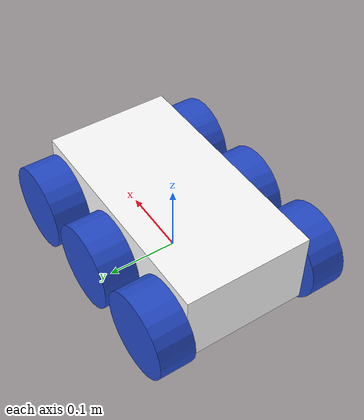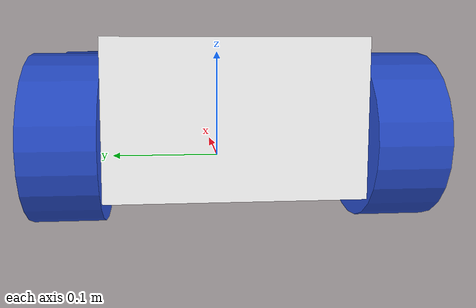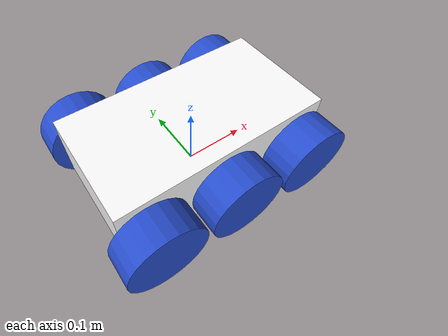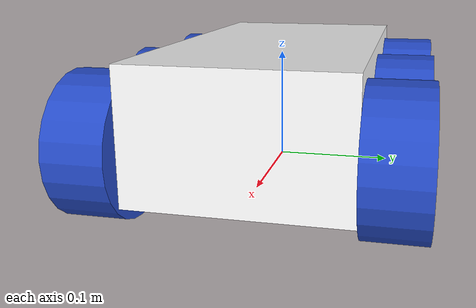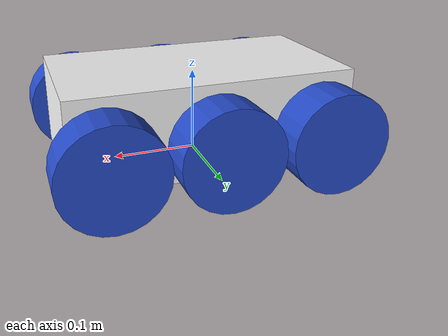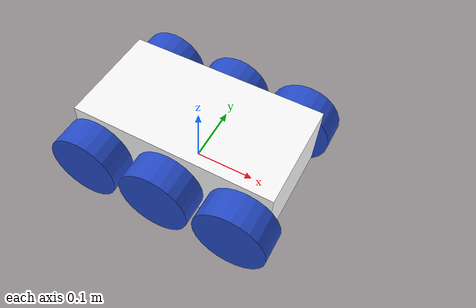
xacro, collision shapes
<?xml version="1.0"?>
<robot xmlns:xacro="http://www.ros.org/wiki/xacro" >

    <xacro:include filename="inertial_macros.xacro"/>
    <xacro:property name="sum_mass" value="20.0"/>
    <xacro:property name="chassis_mass" value="17.0"/>
    <xacro:property name="track_mass" value="3"/>
    <xacro:property name="wheel_mass" value="${track_mass/3}"/>

    <xacro:property name="min_depth" value="0.001"/>
    <xacro:property name="mu1" value="0.7"/>
    <xacro:property name="mu2" value="0.7"/>
    <xacro:property name="kp" value="1000000"/>

<!-- MATERIALS -->

    <material name="white">
        <color rgba="1 1 1 1" />
    </material>

    <material name="orange">
        <color rgba="1 0.3 0.1 1"/>
    </material>

    <material name="blue">
        <color rgba="0.2 0.2 1 1"/>
    </material>

    <material name="black">
        <color rgba="0 0 0 1"/>
    </material>

    <material name="red">
        <color rgba="1 0 0 1"/>
    </material>

<!-- BASE LINK -->

    <link name="base_link">

    </link>

<!-- BASE_FOOTPRINT LINK -->

    <joint name="base_footprint_joint" type="fixed">
        <parent link="base_link"/>
        <child link="base_footprint"/>
        <origin xyz="0 0 0" rpy="0 0 0"/>
    </joint>

    <link name="base_footprint">
    </link>

<!-- CHASSIS LINK -->

    <joint name="chassis_joint" type="fixed">
        <parent link="base_link"/>
        <child link="chassis"/>
        <origin xyz="0 0 0" rpy="0 0 0"/>
    </joint>

    <link name="chassis">
        <visual>
            <origin xyz="0 0 0" rpy="0 0 ${pi}"/>
            <geometry>
                <mesh filename="file://$(find test_bot)/meshes/2-Chassis.stl" />
            </geometry>
            <material name="white"/>
        </visual>
        <collision>
            <origin xyz="0 0 0.0555"/>
            <geometry>
                <box size="0.336 0.18 0.111"/>
            </geometry>
        </collision>
        <xacro:inertial_box mass="${chassis_mass}" x="0.336" y="0.18" z="0.111">
            <origin xyz="0 0 0.0555" rpy="0 0 0"/>
        </xacro:inertial_box>
    </link>

    <gazebo reference="chassis">
        <material>Gazebo/White</material>
    </gazebo>

<!-- LEFT WHEEL 1 LINK -->

    <joint name="left_wheel1_joint" type="continuous">
        <parent link="base_link"/>
        <child link="left_wheel1"/>
        <origin xyz="0.128 0.115 0.04" rpy="-${pi/2} 0 0" />
        <axis xyz="0 0 1"/>
    </joint>

    <link name="left_wheel1">
        <collision>
            <geometry>
                <cylinder radius="0.06" length="0.05"/>
            </geometry>
        </collision>
        <xacro:inertial_cylinder mass="${wheel_mass}" radius="0.06" length="0.05">
            <origin xyz="0 0 0" rpy="0 0 0"/>
        </xacro:inertial_cylinder>
    </link>

    <gazebo reference="left_wheel1">
        <material>Gazebo/Blue</material>
        <min_depth value="${min_depth}"></min_depth>
        <mu1 value="${mu1}"></mu1>
        <mu2 value="${mu2}"></mu2>
        <kp value="${kp}"></kp>

    </gazebo>

<!-- LEFT WHEEL 2 LINK -->

    <joint name="left_wheel2_joint" type="continuous">
        <parent link="base_link"/>
        <child link="left_wheel2"/>
        <origin xyz="0 0.115 0.04" rpy="-${pi/2} 0 0" />
        <axis xyz="0 0 1"/>
    </joint>

    <link name="left_wheel2">
        <collision>
            <geometry>
                <cylinder radius="0.06" length="0.05"/>
            </geometry>
        </collision>
        <xacro:inertial_cylinder mass="${wheel_mass}" length="0.05" radius="0.06">
            <origin xyz="0 0 0" rpy="0 0 0"/>
        </xacro:inertial_cylinder>
    </link>

    <gazebo reference="left_wheel2">
        <material>Gazebo/Blue</material>

        <min_depth value="${min_depth}"></min_depth>
        <mu1 value="${mu1}"></mu1>
        <mu2 value="${mu2}"></mu2>
        <kp value="${kp}"></kp>

    </gazebo>

<!-- LEFT WHEEL 3 LINK -->

    <joint name="left_wheel3_joint" type="continuous">
        <parent link="base_link"/>
        <child link="left_wheel3"/>
        <origin xyz="-0.128 0.115 0.04" rpy="-${pi/2} 0 0" />
        <axis xyz="0 0 1"/>
    </joint>

    <link name="left_wheel3">
        <collision>
            <geometry>
                <cylinder radius="0.06" length="0.05"/>
            </geometry>
        </collision>
        <xacro:inertial_cylinder mass="${wheel_mass}" length="0.05" radius="0.06">
            <origin xyz="0 0 0" rpy="0 0 0"/>
        </xacro:inertial_cylinder>
    </link>

    <gazebo reference="left_wheel3">
        <material>Gazebo/Blue</material>

        <min_depth value="${min_depth}"></min_depth>
        <mu1 value="${mu1}"></mu1>
        <mu2 value="${mu2}"></mu2>
        <kp value="${kp}"></kp>

    </gazebo>

<!-- RIGHT WHEEL 1 LINK -->

    <joint name="right_wheel1_joint" type="continuous">
        <parent link="base_link"/>
        <child link="right_wheel1"/>
        <origin xyz="0.128 -0.115 0.04" rpy="-${pi/2} 0 0" />
        <axis xyz="0 0 1"/>
    </joint>

    <link name="right_wheel1">
        <collision>
            <geometry>
                <cylinder radius="0.06" length="0.05"/>
            </geometry>
        </collision>
        <xacro:inertial_cylinder mass="${wheel_mass}" length="0.05" radius="0.06">
            <origin xyz="0 0 0" rpy="0 0 0"/>
        </xacro:inertial_cylinder>
    </link>

    <gazebo reference="right_wheel1">
        <material>Gazebo/Blue</material>

        <min_depth value="${min_depth}"></min_depth>
        <mu1 value="${mu1}"></mu1>
        <mu2 value="${mu2}"></mu2>
        <kp value="${kp}"></kp>

    </gazebo>

<!-- RIGHT WHEEL 2 LINK -->

    <joint name="right_wheel2_joint" type="continuous">
        <parent link="base_link"/>
        <child link="right_wheel2"/>
        <origin xyz="0 -0.115 0.04" rpy="-${pi/2} 0 0" />
        <axis xyz="0 0 1"/>
    </joint>

    <link name="right_wheel2">
        <collision>
            <geometry>
                <cylinder radius="0.06" length="0.05"/>
            </geometry>
        </collision>

        <xacro:inertial_cylinder mass="${wheel_mass}" length="0.05" radius="0.06">
            <origin xyz="0 0 0" rpy="0 0 0"/>
        </xacro:inertial_cylinder>
    </link>

    <gazebo reference="right_wheel2">
        <material>Gazebo/Blue</material>

        <min_depth value="${min_depth}"></min_depth>
        <mu1 value="${mu1}"></mu1>
        <mu2 value="${mu2}"></mu2>
        <kp value="${kp}"></kp>

    </gazebo>

<!-- RIGHT WHEEL 3 LINK -->

    <joint name="right_wheel3_joint" type="continuous">
        <parent link="base_link"/>
        <child link="right_wheel3"/>
        <origin xyz="-0.128 -0.115 0.04" rpy="-${pi/2} 0 0" />
        <axis xyz="0 0 1"/>
    </joint>

    <link name="right_wheel3">
        <collision>
            <geometry>
                <cylinder radius="0.06" length="0.05"/>
            </geometry>
        </collision>

        <xacro:inertial_cylinder mass="${wheel_mass}" length="0.05" radius="0.06">
           <origin xyz="0 0 0" rpy="0 0 0"/>
        </xacro:inertial_cylinder>
    </link>

    <gazebo reference="right_wheel3">
        <material>Gazebo/Blue</material>

        <min_depth value="${min_depth}"></min_depth>
        <mu1 value="${mu1}"></mu1>
        <mu2 value="${mu2}"></mu2>
        <kp value="${kp}"></kp>

    </gazebo>

</robot>
